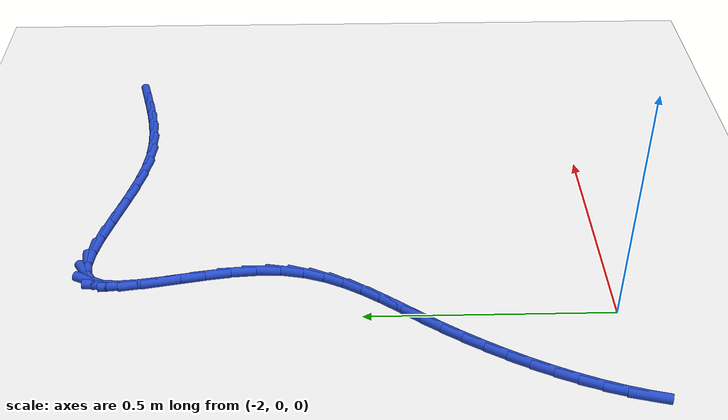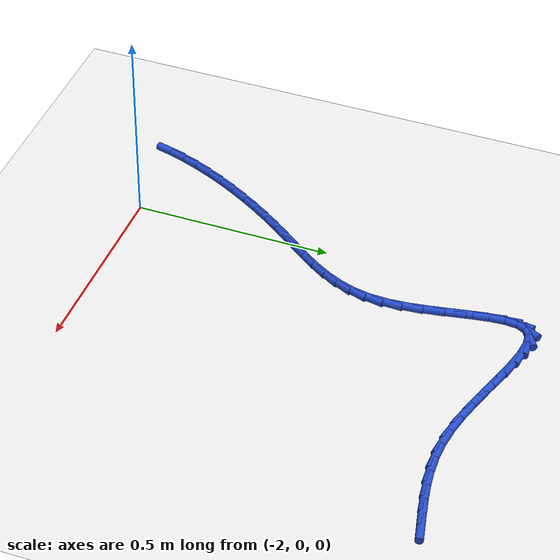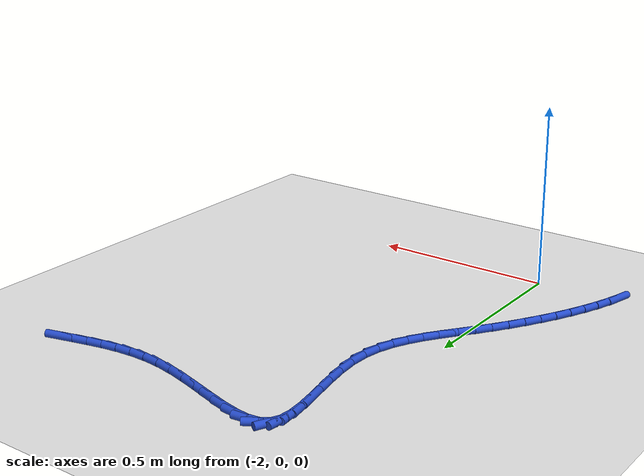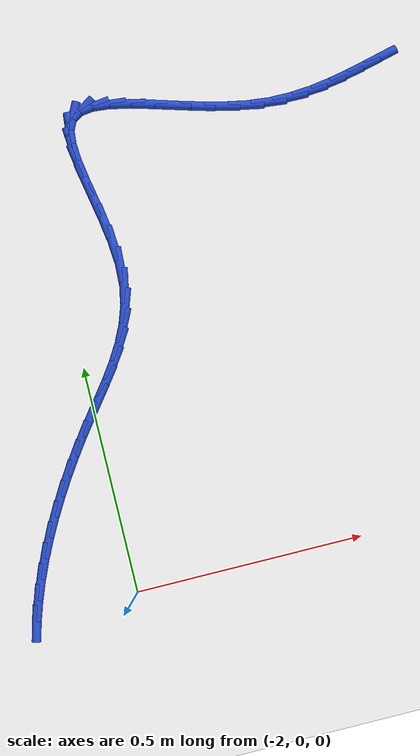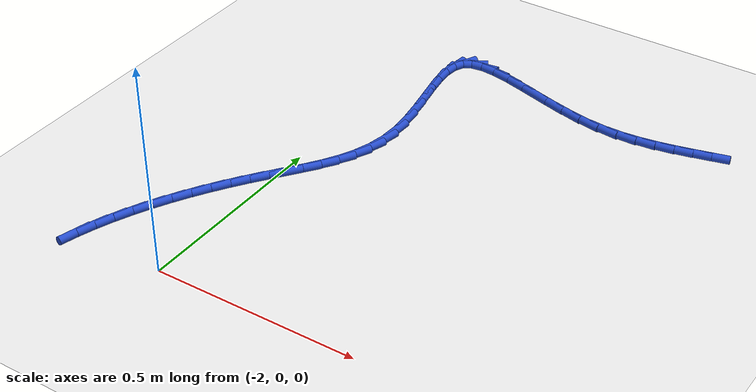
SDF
<sdf version="1.6">
 <world name="default">
  <model name="ground_plane">
   <static>1</static>
   <link name="link">
    <collision name="collision">
     <geometry><plane><normal>0 0 1</normal><size>100 100</size></plane></geometry>
     <surface><friction><ode><mu>100</mu><mu2>50</mu2></ode></friction></surface>
    </collision>
    <visual name="visual">
     <cast_shadows>0</cast_shadows>
     <geometry><plane><normal>0 0 1</normal><size>100 100</size></plane></geometry>
     <material>
      <script><uri>file://media/materials/scripts/gazebo.material</uri><name>Gazebo/WhiteGlow</name></script>
     </material>
    </visual>
   </link>
  </model>
  <model name="line">
   <link name="link_43">
    <pose>-1.1989695017149629 1.0132438490401319 0.01 0 1.57 0.24411033773854265</pose>
    <collision name="collision">
     <geometry><cylinder><radius>0.01</radius><length>0.08</length></cylinder></geometry>
    </collision>
    <visual name="visual">
     <material>
      <script><name>Gazebo/Blue</name><uri>file://media/materials/scripts/gazebo.material</uri></script>
     </material>
     <geometry><cylinder><radius>0.01</radius><length>0.08</length></cylinder></geometry>
    </visual>
   </link>
   <link name="link_44">
    <pose>-1.239877084287421 1.00305468637618 0.01 0 1.57 0.23210068798596767</pose>
    <collision name="collision">
     <geometry><cylinder><radius>0.01</radius><length>0.08</length></cylinder></geometry>
    </collision>
    <visual name="visual">
     <material>
      <script><name>Gazebo/Blue</name><uri>file://media/materials/scripts/gazebo.material</uri></script>
     </material>
     <geometry><cylinder><radius>0.01</radius><length>0.08</length></cylinder></geometry>
    </visual>
   </link>
   <link name="link_45">
    <pose>-1.28171523596317 0.9931658078642038 0.01 0 1.57 0.19875672014599838</pose>
    <collision name="collision">
     <geometry><cylinder><radius>0.01</radius><length>0.08</length></cylinder></geometry>
    </collision>
    <visual name="visual">
     <material>
      <script><name>Gazebo/Blue</name><uri>file://media/materials/scripts/gazebo.material</uri></script>
     </material>
     <geometry><cylinder><radius>0.01</radius><length>0.08</length></cylinder></geometry>
    </visual>
   </link>
   <link name="link_46">
    <pose>-1.3247392331835572 0.9845000867385987 0.01 0 1.57 0.14558742378545486</pose>
    <collision name="collision">
     <geometry><cylinder><radius>0.01</radius><length>0.08</length></cylinder></geometry>
    </collision>
    <visual name="visual">
     <material>
      <script><name>Gazebo/Blue</name><uri>file://media/materials/scripts/gazebo.material</uri></script>
     </material>
     <geometry><cylinder><radius>0.01</radius><length>0.08</length></cylinder></geometry>
    </visual>
   </link>
   <link name="link_47">
    <pose>-1.3692043523899293 0.9779803962337583 0.01 0 1.57 0.07461583450697072</pose>
    <collision name="collision">
     <geometry><cylinder><radius>0.01</radius><length>0.08</length></cylinder></geometry>
    </collision>
    <visual name="visual">
     <material>
      <script><name>Gazebo/Blue</name><uri>file://media/materials/scripts/gazebo.material</uri></script>
     </material>
     <geometry><cylinder><radius>0.01</radius><length>0.08</length></cylinder></geometry>
    </visual>
   </link>
   <link name="link_48">
    <pose>-1.4153658700236331 0.9745296095840782 0.01 0 1.57 -0.011243644711374139</pose>
    <collision name="collision">
     <geometry><cylinder><radius>0.01</radius><length>0.08</length></cylinder></geometry>
    </collision>
    <visual name="visual">
     <material>
      <script><name>Gazebo/Blue</name><uri>file://media/materials/scripts/gazebo.material</uri></script>
     </material>
     <geometry><cylinder><radius>0.01</radius><length>0.08</length></cylinder></geometry>
    </visual>
   </link>
   <link name="link_49">
    <pose>-1.4634790625260155 0.9750706000239524 0.01 0 1.57 -0.10761558193277132</pose>
    <collision name="collision">
     <geometry><cylinder><radius>0.01</radius><length>0.08</length></cylinder></geometry>
    </collision>
    <visual name="visual">
     <material>
      <script><name>Gazebo/Blue</name><uri>file://media/materials/scripts/gazebo.material</uri></script>
     </material>
     <geometry><cylinder><radius>0.01</radius><length>0.08</length></cylinder></geometry>
    </visual>
   </link>
   <link name="link_50">
    <pose>-1.5137869908170367 0.9805055140046122 0.01 0 1.57 -0.19323684448059875</pose>
    <collision name="collision">
     <geometry><cylinder><radius>0.01</radius><length>0.08</length></cylinder></geometry>
    </collision>
    <visual name="visual">
     <material>
      <script><name>Gazebo/Blue</name><uri>file://media/materials/scripts/gazebo.material</uri></script>
     </material>
     <geometry><cylinder><radius>0.01</radius><length>0.08</length></cylinder></geometry>
    </visual>
   </link>
   <link name="link_51">
    <pose>-1.5659266324204444 0.990708121149609 0.01 0 1.57 -0.24817131483991978</pose>
    <collision name="collision">
     <geometry><cylinder><radius>0.01</radius><length>0.08</length></cylinder></geometry>
    </collision>
    <visual name="visual">
     <material>
      <script><name>Gazebo/Blue</name><uri>file://media/materials/scripts/gazebo.material</uri></script>
     </material>
     <geometry><cylinder><radius>0.01</radius><length>0.08</length></cylinder></geometry>
    </visual>
   </link>
   <link name="link_52">
    <pose>-1.6186620097401376 1.0040709975331081 0.01 0 1.57 -0.2771564924149752</pose>
    <collision name="collision">
     <geometry><cylinder><radius>0.01</radius><length>0.08</length></cylinder></geometry>
    </collision>
    <visual name="visual">
     <material>
      <script><name>Gazebo/Blue</name><uri>file://media/materials/scripts/gazebo.material</uri></script>
     </material>
     <geometry><cylinder><radius>0.01</radius><length>0.08</length></cylinder></geometry>
    </visual>
   </link>
   <link name="link_53">
    <pose>-1.6706893178236808 1.0188716326224314 0.01 0 1.57 -0.2824677940301614</pose>
    <collision name="collision">
     <geometry><cylinder><radius>0.01</radius><length>0.08</length></cylinder></geometry>
    </collision>
    <visual name="visual">
     <material>
      <script><name>Gazebo/Blue</name><uri>file://media/materials/scripts/gazebo.material</uri></script>
     </material>
     <geometry><cylinder><radius>0.01</radius><length>0.08</length></cylinder></geometry>
    </visual>
   </link>
   <link name="link_54">
    <pose>-1.7207047517186396 1.0333875158849004 0.01 0 1.57 -0.2617086677111485</pose>
    <collision name="collision">
     <geometry><cylinder><radius>0.01</radius><length>0.08</length></cylinder></geometry>
    </collision>
    <visual name="visual">
     <material>
      <script><name>Gazebo/Blue</name><uri>file://media/materials/scripts/gazebo.material</uri></script>
     </material>
     <geometry><cylinder><radius>0.01</radius><length>0.08</length></cylinder></geometry>
    </visual>
   </link>
   <link name="link_55">
    <pose>-1.767404506472582 1.0458961367878383 0.01 0 1.57 -0.20567152623822782</pose>
    <collision name="collision">
     <geometry><cylinder><radius>0.01</radius><length>0.08</length></cylinder></geometry>
    </collision>
    <visual name="visual">
     <material>
      <script><name>Gazebo/Blue</name><uri>file://media/materials/scripts/gazebo.material</uri></script>
     </material>
     <geometry><cylinder><radius>0.01</radius><length>0.08</length></cylinder></geometry>
    </visual>
   </link>
   <link name="link_56">
    <pose>-1.8094847771330724 1.0546749847985661 0.01 0 1.57 -0.09174510103921285</pose>
    <collision name="collision">
     <geometry><cylinder><radius>0.01</radius><length>0.08</length></cylinder></geometry>
    </collision>
    <visual name="visual">
     <material>
      <script><name>Gazebo/Blue</name><uri>file://media/materials/scripts/gazebo.material</uri></script>
     </material>
     <geometry><cylinder><radius>0.01</radius><length>0.08</length></cylinder></geometry>
    </visual>
   </link>
   <link name="link_57">
    <pose>-1.8456417587476779 1.0580015493844064 0.01 0 1.57 0.1322428347625958</pose>
    <collision name="collision">
     <geometry><cylinder><radius>0.01</radius><length>0.08</length></cylinder></geometry>
    </collision>
    <visual name="visual">
     <material>
      <script><name>Gazebo/Blue</name><uri>file://media/materials/scripts/gazebo.material</uri></script>
     </material>
     <geometry><cylinder><radius>0.01</radius><length>0.08</length></cylinder></geometry>
    </visual>
   </link>
   <link name="link_58">
    <pose>-1.8745716463639641 1.054153320012681 0.01 0 1.57 0.5584641466114703</pose>
    <collision name="collision">
     <geometry><cylinder><radius>0.01</radius><length>0.08</length></cylinder></geometry>
    </collision>
    <visual name="visual">
     <material>
      <script><name>Gazebo/Blue</name><uri>file://media/materials/scripts/gazebo.material</uri></script>
     </material>
     <geometry><cylinder><radius>0.01</radius><length>0.08</length></cylinder></geometry>
    </visual>
   </link>
   <link name="link_59">
    <pose>-1.8949706350294975 1.0414077861507123 0.01 0 1.57 1.1208592005511742</pose>
    <collision name="collision">
     <geometry><cylinder><radius>0.01</radius><length>0.08</length></cylinder></geometry>
    </collision>
    <visual name="visual">
     <material>
      <script><name>Gazebo/Blue</name><uri>file://media/materials/scripts/gazebo.material</uri></script>
     </material>
     <geometry><cylinder><radius>0.01</radius><length>0.08</length></cylinder></geometry>
    </visual>
   </link>
   <link name="link_60">
    <pose>-1.9060129282466856 1.0185448314815748 0.01 0 1.57 1.4759221124248132</pose>
    <collision name="collision">
     <geometry><cylinder><radius>0.01</radius><length>0.08</length></cylinder></geometry>
    </collision>
    <visual name="visual">
     <material>
      <script><name>Gazebo/Blue</name><uri>file://media/materials/scripts/gazebo.material</uri></script>
     </material>
     <geometry><cylinder><radius>0.01</radius><length>0.08</length></cylinder></geometry>
    </visual>
   </link>
   <link name="link_61">
    <pose>-1.9090497136467701 0.9866323833893106 0.01 0 1.57 -1.494545546196948</pose>
    <collision name="collision">
     <geometry><cylinder><radius>0.01</radius><length>0.08</length></cylinder></geometry>
    </collision>
    <visual name="visual">
     <material>
      <script><name>Gazebo/Blue</name><uri>file://media/materials/scripts/gazebo.material</uri></script>
     </material>
     <geometry><cylinder><radius>0.01</radius><length>0.08</length></cylinder></geometry>
    </visual>
   </link>
   <link name="link_62">
    <pose>-1.9060515913033171 0.9473893812328287 0.01 0 1.57 -1.4146276621818226</pose>
    <collision name="collision">
     <geometry><cylinder><radius>0.01</radius><length>0.08</length></cylinder></geometry>
    </collision>
    <visual name="visual">
     <material>
      <script><name>Gazebo/Blue</name><uri>file://media/materials/scripts/gazebo.material</uri></script>
     </material>
     <geometry><cylinder><radius>0.01</radius><length>0.08</length></cylinder></geometry>
    </visual>
   </link>
   <link name="link_63">
    <pose>-1.898989205321892 0.9025348106493424 0.01 0 1.57 -1.3851330176132328</pose>
    <collision name="collision">
     <geometry><cylinder><radius>0.01</radius><length>0.08</length></cylinder></geometry>
    </collision>
    <visual name="visual">
     <material>
      <script><name>Gazebo/Blue</name><uri>file://media/materials/scripts/gazebo.material</uri></script>
     </material>
     <geometry><cylinder><radius>0.01</radius><length>0.08</length></cylinder></geometry>
    </visual>
   </link>
   <link name="link_64">
    <pose>-1.8898331998080606 0.8537876572760671 0.01 0 1.57 -1.3905500592518238</pose>
    <collision name="collision">
     <geometry><cylinder><radius>0.01</radius><length>0.08</length></cylinder></geometry>
    </collision>
    <visual name="visual">
     <material>
      <script><name>Gazebo/Blue</name><uri>file://media/materials/scripts/gazebo.material</uri></script>
     </material>
     <geometry><cylinder><radius>0.01</radius><length>0.08</length></cylinder></geometry>
    </visual>
   </link>
   <link name="link_65">
    <pose>-1.8805542188673878 0.8028669067502168 0.01 0 1.57 -1.4271452669726987</pose>
    <collision name="collision">
     <geometry><cylinder><radius>0.01</radius><length>0.08</length></cylinder></geometry>
    </collision>
    <visual name="visual">
     <material>
      <script><name>Gazebo/Blue</name><uri>file://media/materials/scripts/gazebo.material</uri></script>
     </material>
     <geometry><cylinder><radius>0.01</radius><length>0.08</length></cylinder></geometry>
    </visual>
   </link>
   <link name="link_66">
    <pose>-1.87312290660544 0.7514915447090058 0.01 0 1.57 -1.4988209282986549</pose>
    <collision name="collision">
     <geometry><cylinder><radius>0.01</radius><length>0.08</length></cylinder></geometry>
    </collision>
    <visual name="visual">
     <material>
      <script><name>Gazebo/Blue</name><uri>file://media/materials/scripts/gazebo.material</uri></script>
     </material>
     <geometry><cylinder><radius>0.01</radius><length>0.08</length></cylinder></geometry>
    </visual>
   </link>
   <link name="link_67">
    <pose>-1.8695099071277803 0.7013805567896486 0.01 0 1.57 1.5257412523440472</pose>
    <collision name="collision">
     <geometry><cylinder><radius>0.01</radius><length>0.08</length></cylinder></geometry>
    </collision>
    <visual name="visual">
     <material>
      <script><name>Gazebo/Blue</name><uri>file://media/materials/scripts/gazebo.material</uri></script>
     </material>
     <geometry><cylinder><radius>0.01</radius><length>0.08</length></cylinder></geometry>
    </visual>
   </link>
   <link name="link_68">
    <pose>-1.8716364919369075 0.654212825302235 0.01 0 1.57 1.379378935516217</pose>
    <collision name="collision">
     <geometry><cylinder><radius>0.01</radius><length>0.08</length></cylinder></geometry>
    </collision>
    <visual name="visual">
     <material>
      <script><name>Gazebo/Blue</name><uri>file://media/materials/scripts/gazebo.material</uri></script>
     </material>
     <geometry><cylinder><radius>0.01</radius><length>0.08</length></cylinder></geometry>
    </visual>
   </link>
   <link name="link_69">
    <pose>-1.8800911887932432 0.6105846998375098 0.01 0 1.57 1.2410665539385004</pose>
    <collision name="collision">
     <geometry><cylinder><radius>0.01</radius><length>0.08</length></cylinder></geometry>
    </collision>
    <visual name="visual">
     <material>
      <script><name>Gazebo/Blue</name><uri>file://media/materials/scripts/gazebo.material</uri></script>
     </material>
     <geometry><cylinder><radius>0.01</radius><length>0.08</length></cylinder></geometry>
    </visual>
   </link>
   <link name="link_70">
    <pose>-1.8940100625512886 0.5699127543326853 0.01 0 1.57 1.1225662686337843</pose>
    <collision name="collision">
     <geometry><cylinder><radius>0.01</radius><length>0.08</length></cylinder></geometry>
    </collision>
    <visual name="visual">
     <material>
      <script><name>Gazebo/Blue</name><uri>file://media/materials/scripts/gazebo.material</uri></script>
     </material>
     <geometry><cylinder><radius>0.01</radius><length>0.08</length></cylinder></geometry>
    </visual>
   </link>
   <link name="link_71">
    <pose>-1.9124558060752903 0.5315539656864534 0.01 0 1.57 1.02993376319213</pose>
    <collision name="collision">
     <geometry><cylinder><radius>0.01</radius><length>0.08</length></cylinder></geometry>
    </collision>
    <visual name="visual">
     <material>
      <script><name>Gazebo/Blue</name><uri>file://media/materials/scripts/gazebo.material</uri></script>
     </material>
     <geometry><cylinder><radius>0.01</radius><length>0.08</length></cylinder></geometry>
    </visual>
   </link>
   <link name="link_72">
    <pose>-1.9344911122294954 0.4948653107975075 0.01 0 1.57 0.9652744058760457</pose>
    <collision name="collision">
     <geometry><cylinder><radius>0.01</radius><length>0.08</length></cylinder></geometry>
    </collision>
    <visual name="visual">
     <material>
      <script><name>Gazebo/Blue</name><uri>file://media/materials/scripts/gazebo.material</uri></script>
     </material>
     <geometry><cylinder><radius>0.01</radius><length>0.08</length></cylinder></geometry>
    </visual>
   </link>
   <link name="link_73">
    <pose>-1.9591786738781511 0.4592037665645399 0.01 0 1.57 0.9283043528845709</pose>
    <collision name="collision">
     <geometry><cylinder><radius>0.01</radius><length>0.08</length></cylinder></geometry>
    </collision>
    <visual name="visual">
     <material>
      <script><name>Gazebo/Blue</name><uri>file://media/materials/scripts/gazebo.material</uri></script>
     </material>
     <geometry><cylinder><radius>0.01</radius><length>0.08</length></cylinder></geometry>
    </visual>
   </link>
   <link name="link_74">
    <pose>-1.9855811838855058 0.42392630988624275 0.01 0 1.57 0.9178562485198895</pose>
    <collision name="collision">
     <geometry><cylinder><radius>0.01</radius><length>0.08</length></cylinder></geometry>
    </collision>
    <visual name="visual">
     <material>
      <script><name>Gazebo/Blue</name><uri>file://media/materials/scripts/gazebo.material</uri></script>
     </material>
     <geometry><cylinder><radius>0.01</radius><length>0.08</length></cylinder></geometry>
    </visual>
   </link>
   <link name="link_75">
    <pose>-2.012761335115804 0.38838991766130915 0.01 0 1.57 0.9322652607225258</pose>
    <collision name="collision">
     <geometry><cylinder><radius>0.01</radius><length>0.08</length></cylinder></geometry>
    </collision>
    <visual name="visual">
     <material>
      <script><name>Gazebo/Blue</name><uri>file://media/materials/scripts/gazebo.material</uri></script>
     </material>
     <geometry><cylinder><radius>0.01</radius><length>0.08</length></cylinder></geometry>
    </visual>
   </link>
   <link name="link_76">
    <pose>-2.0397966386434567 0.35196711272180276 0.01 0 1.57 0.9596612847192497</pose>
    <collision name="collision">
     <geometry><cylinder><radius>0.01</radius><length>0.08</length></cylinder></geometry>
    </collision>
    <visual name="visual">
     <material>
      <script><name>Gazebo/Blue</name><uri>file://media/materials/scripts/gazebo.material</uri></script>
     </material>
     <geometry><cylinder><radius>0.01</radius><length>0.08</length></cylinder></geometry>
    </visual>
   </link>
   <link name="link_77">
    <pose>-2.066116676792783 0.3143997793903388 0.01 0 1.57 0.9888542077969338</pose>
    <collision name="collision">
     <geometry><cylinder><radius>0.01</radius><length>0.08</length></cylinder></geometry>
    </collision>
    <visual name="visual">
     <material>
      <script><name>Gazebo/Blue</name><uri>file://media/materials/scripts/gazebo.material</uri></script>
     </material>
     <geometry><cylinder><radius>0.01</radius><length>0.08</length></cylinder></geometry>
    </visual>
   </link>
   <link name="link_78">
    <pose>-2.0915094703210313 0.27580584335585245 0.01 0 1.57 1.0196788205273468</pose>
    <collision name="collision">
     <geometry><cylinder><radius>0.01</radius><length>0.08</length></cylinder></geometry>
    </collision>
    <visual name="visual">
     <material>
      <script><name>Gazebo/Blue</name><uri>file://media/materials/scripts/gazebo.material</uri></script>
     </material>
     <geometry><cylinder><radius>0.01</radius><length>0.08</length></cylinder></geometry>
    </visual>
   </link>
   <link name="link_79">
    <pose>-2.115779131760458 0.23632011235034275 0.01 0 1.57 1.0524972764604403</pose>
    <collision name="collision">
     <geometry><cylinder><radius>0.01</radius><length>0.08</length></cylinder></geometry>
    </collision>
    <visual name="visual">
     <material>
      <script><name>Gazebo/Blue</name><uri>file://media/materials/scripts/gazebo.material</uri></script>
     </material>
     <geometry><cylinder><radius>0.01</radius><length>0.08</length></cylinder></geometry>
    </visual>
   </link>
   <link name="link_80">
    <pose>-2.1387297736433197 0.19607739410580985 0.01 0 1.57 1.0877011466438027</pose>
    <collision name="collision">
     <geometry><cylinder><radius>0.01</radius><length>0.08</length></cylinder></geometry>
    </collision>
    <visual name="visual">
     <material>
      <script><name>Gazebo/Blue</name><uri>file://media/materials/scripts/gazebo.material</uri></script>
     </material>
     <geometry><cylinder><radius>0.01</radius><length>0.08</length></cylinder></geometry>
    </visual>
   </link>
   <link name="link_81">
    <pose>-2.160165508501873 0.155212496354253 0.01 0 1.57 1.1257192514959045</pose>
    <collision name="collision">
     <geometry><cylinder><radius>0.01</radius><length>0.08</length></cylinder></geometry>
    </collision>
    <visual name="visual">
     <material>
      <script><name>Gazebo/Blue</name><uri>file://media/materials/scripts/gazebo.material</uri></script>
     </material>
     <geometry><cylinder><radius>0.01</radius><length>0.08</length></cylinder></geometry>
    </visual>
   </link>
   <link name="link_82">
    <pose>-2.1798904488683752 0.11386022682767119 0.01 0 1.57 1.1670241249108855</pose>
    <collision name="collision">
     <geometry><cylinder><radius>0.01</radius><length>0.08</length></cylinder></geometry>
    </collision>
    <visual name="visual">
     <material>
      <script><name>Gazebo/Blue</name><uri>file://media/materials/scripts/gazebo.material</uri></script>
     </material>
     <geometry><cylinder><radius>0.01</radius><length>0.08</length></cylinder></geometry>
    </visual>
   </link>
   <link name="link_83">
    <pose>-2.197708707275083 0.07215539325806489 0.01 0 1.57 1.2121361264298163</pose>
    <collision name="collision">
     <geometry><cylinder><radius>0.01</radius><length>0.08</length></cylinder></geometry>
    </collision>
    <visual name="visual">
     <material>
      <script><name>Gazebo/Blue</name><uri>file://media/materials/scripts/gazebo.material</uri></script>
     </material>
     <geometry><cylinder><radius>0.01</radius><length>0.08</length></cylinder></geometry>
    </visual>
   </link>
   <link name="link_84">
    <pose>-2.213424396254253 0.030232803377432785 0.01 0 1.57 1.2616234194661422</pose>
    <collision name="collision">
     <geometry><cylinder><radius>0.01</radius><length>0.08</length></cylinder></geometry>
    </collision>
    <visual name="visual">
     <material>
      <script><name>Gazebo/Blue</name><uri>file://media/materials/scripts/gazebo.material</uri></script>
     </material>
     <geometry><cylinder><radius>0.01</radius><length>0.08</length></cylinder></geometry>
    </visual>
   </link>
   <link name="link_85">
    <pose>-2.226841628338141 -0.011772735082224761 0.01 0 1.57 1.3160949373520707</pose>
    <collision name="collision">
     <geometry><cylinder><radius>0.01</radius><length>0.08</length></cylinder></geometry>
    </collision>
    <visual name="visual">
     <material>
      <script><name>Gazebo/Blue</name><uri>file://media/materials/scripts/gazebo.material</uri></script>
     </material>
     <geometry><cylinder><radius>0.01</radius><length>0.08</length></cylinder></geometry>
    </visual>
   </link>
  </model>
 </world>
</sdf>
